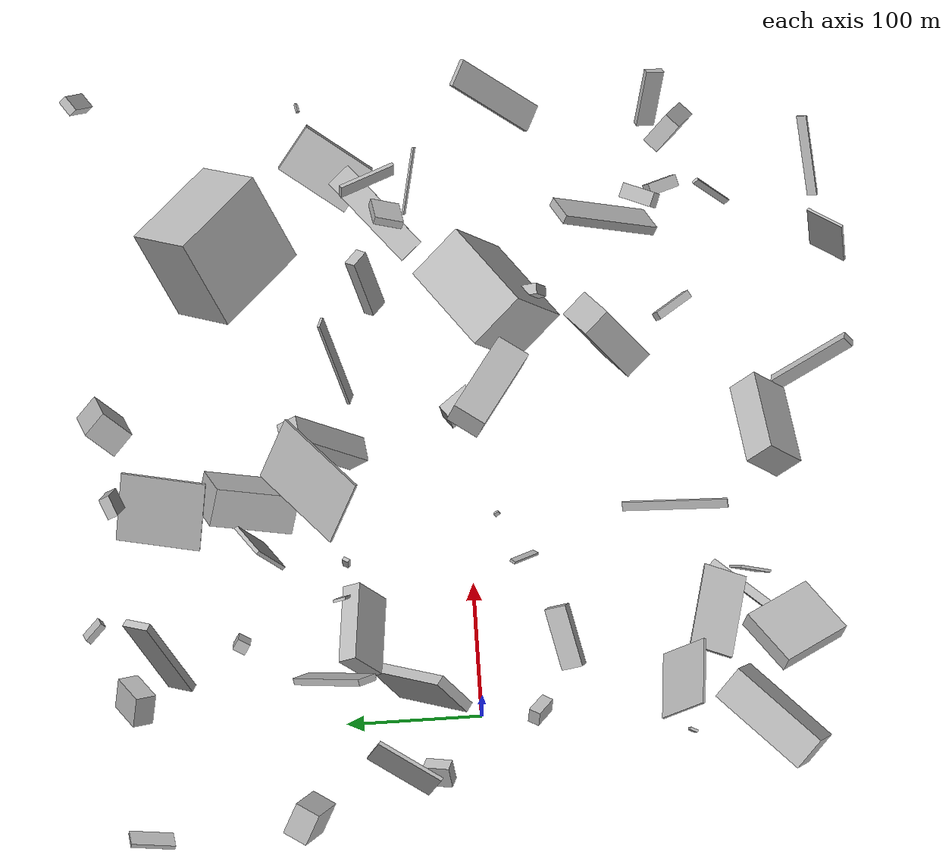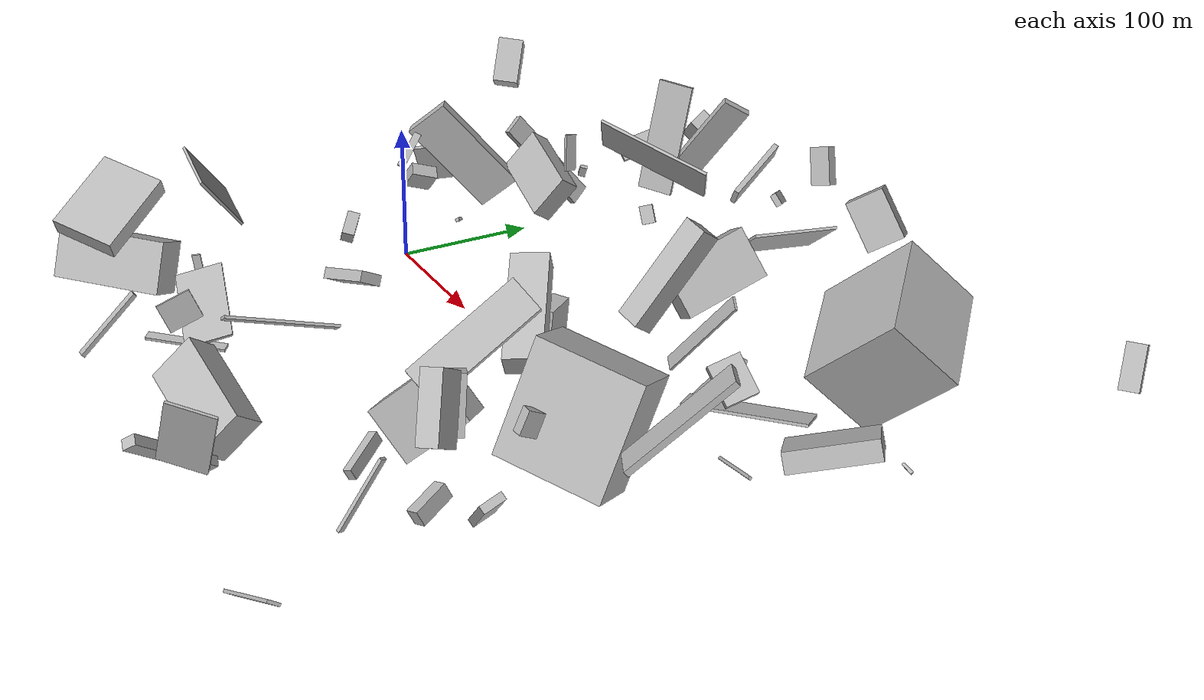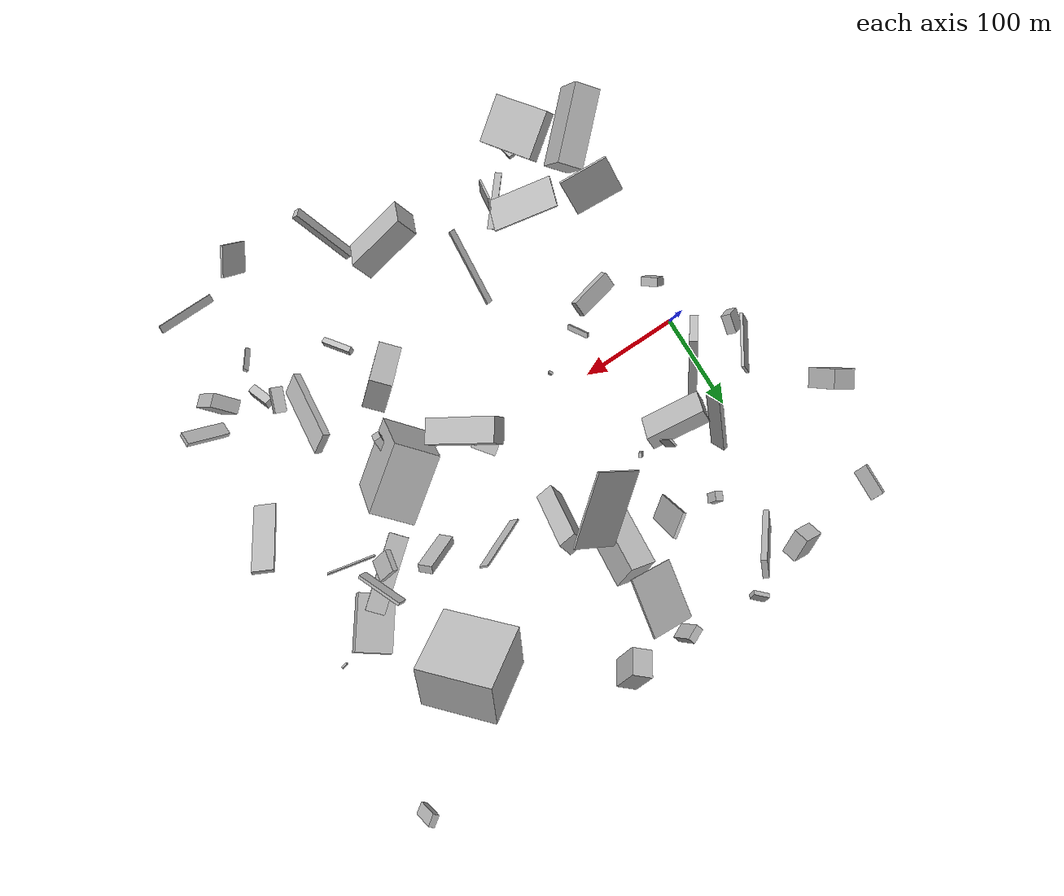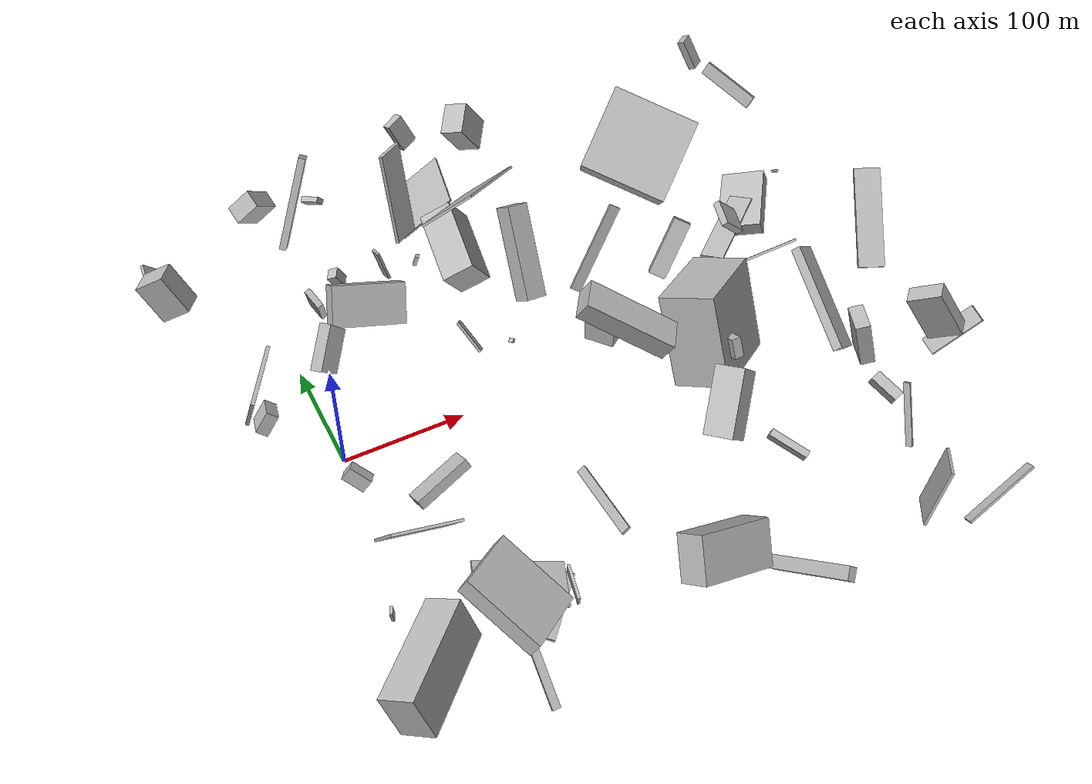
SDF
<sdf version="1.6">
 <world name="default">
  <scene>
   <sky><clouds><speed>12</speed></clouds></sky>
   <ambient>0.4 0.4 0.4 1</ambient>
   <background>0.7 0.7 0.7 1</background>
   <shadows>1</shadows>
  </scene>
  <gravity>0 0 -9.8066</gravity>
  <magnetic_field>6e-06 2.3e-05 -4.2e-05</magnetic_field>
  <physics default="0" name="default_physics" type="ode">
   <ode>
    <solver>
     <type>quick</type>
     <iters>10</iters>
     <sor>1.0</sor>
     <use_dynamic_moi_rescaling>0</use_dynamic_moi_rescaling>
    </solver>
    <constraints>
     <cfm>0</cfm>
     <erp>0.2</erp>
     <contact_max_correcting_vel>100</contact_max_correcting_vel>
     <contact_surface_layer>0.001</contact_surface_layer>
    </constraints>
   </ode>
   <max_step_size>0.004</max_step_size>
   <real_time_factor>1</real_time_factor>
   <real_time_update_rate>250</real_time_update_rate>
  </physics>
  <light name="sun" type="directional">
   <pose>0 0 10 0 0 0</pose>
   <diffuse>0.8 0.8 0.8 1</diffuse>
   <specular>0.2 0.2 0.2 1</specular>
   <attenuation>
    <range>1000</range>
    <constant>0.9</constant>
    <linear>0.01</linear>
    <quadratic>0.001</quadratic>
   </attenuation>
   <direction>-0.5 0.1 -0.9</direction>
  </light>
  <model name="building_1">
   <static>0</static>
   <pose>311.5823228846028 -7.215268494068738 65.71859845296224 2.9007131095813112 -0.3421562160943645 -0.8706125740979714</pose>
   <link name="link">
    <gravity>0</gravity>
    <pose>0 0 40.0 0 0 0</pose>
    <collision name="collision"><geometry><box><size>47 75 80</size></box></geometry></collision>
    <visual name="visual">
     <cast_shadows>0</cast_shadows>
     <geometry><box><size>47 75 80</size></box></geometry>
     <material>
      <script>
       <uri>model://HANNAS_wall/materials/scripts</uri>
       <uri>model://HANNAS_wall/materials/textures</uri>
       <name>vrc/HANNAS_wall</name>
      </script>
     </material>
    </visual>
   </link>
  </model>
  <model name="building_2">
   <static>0</static>
   <pose>227.71382739096427 -29.893906612120233 62.40925956773131 1.4283571348990558 1.0352077698665598 2.4147725639597057</pose>
   <link name="link">
    <gravity>0</gravity>
    <pose>0 0 13.0 0 0 0</pose>
    <collision name="collision"><geometry><box><size>18 80 26</size></box></geometry></collision>
    <visual name="visual">
     <cast_shadows>0</cast_shadows>
     <geometry><box><size>18 80 26</size></box></geometry>
     <material>
      <script>
       <uri>model://HANNAS_wall/materials/scripts</uri>
       <uri>model://HANNAS_wall/materials/textures</uri>
       <name>vrc/HANNAS_wall</name>
      </script>
     </material>
    </visual>
   </link>
  </model>
  <model name="building_3">
   <static>0</static>
   <pose>-27.169439239823248 -204.2750942461347 32.71089805823232 0.09844187716610353 -1.1810460849203128 2.253050503882688</pose>
   <link name="link">
    <gravity>0</gravity>
    <pose>0 0 13.5 0 0 0</pose>
    <collision name="collision"><geometry><box><size>37 80 27</size></box></geometry></collision>
    <visual name="visual">
     <cast_shadows>0</cast_shadows>
     <geometry><box><size>37 80 27</size></box></geometry>
     <material>
      <script>
       <uri>model://HANNAS_wall/materials/scripts</uri>
       <uri>model://HANNAS_wall/materials/textures</uri>
       <name>vrc/HANNAS_wall</name>
      </script>
     </material>
    </visual>
   </link>
  </model>
  <model name="building_4">
   <static>0</static>
   <pose>107.11008408262622 92.53836904630049 93.3107270292978 2.8230807257691164 -0.22441113641553048 -2.0821183867211066</pose>
   <link name="link">
    <gravity>0</gravity>
    <pose>0 0 4.0 0 0 0</pose>
    <collision name="collision"><geometry><box><size>5 3 8</size></box></geometry></collision>
    <visual name="visual">
     <cast_shadows>0</cast_shadows>
     <geometry><box><size>5 3 8</size></box></geometry>
     <material>
      <script>
       <uri>model://HANNAS_wall/materials/scripts</uri>
       <uri>model://HANNAS_wall/materials/textures</uri>
       <name>vrc/HANNAS_wall</name>
      </script>
     </material>
    </visual>
   </link>
  </model>
  <model name="building_5">
   <static>0</static>
   <pose>403.4057572144674 -270.04526337684683 33.81088034099663 0.5183256024075885 -0.5296064166585648 -1.7483981656695022</pose>
   <link name="link">
    <gravity>0</gravity>
    <pose>0 0 1.0 0 0 0</pose>
    <collision name="collision"><geometry><box><size>8 61 2</size></box></geometry></collision>
    <visual name="visual">
     <cast_shadows>0</cast_shadows>
     <geometry><box><size>8 61 2</size></box></geometry>
     <material>
      <script>
       <uri>model://HANNAS_wall/materials/scripts</uri>
       <uri>model://HANNAS_wall/materials/textures</uri>
       <name>vrc/HANNAS_wall</name>
      </script>
     </material>
    </visual>
   </link>
  </model>
  <model name="building_6">
   <static>0</static>
   <pose>157.64600168223862 158.39445541967027 34.74518730858645 -2.734412703164776 -0.4863691982176288 -0.29487709569102</pose>
   <link name="link">
    <gravity>0</gravity>
    <pose>0 0 19.5 0 0 0</pose>
    <collision name="collision"><geometry><box><size>29 64 39</size></box></geometry></collision>
    <visual name="visual">
     <cast_shadows>0</cast_shadows>
     <geometry><box><size>29 64 39</size></box></geometry>
     <material>
      <script>
       <uri>model://HANNAS_wall/materials/scripts</uri>
       <uri>model://HANNAS_wall/materials/textures</uri>
       <name>vrc/HANNAS_wall</name>
      </script>
     </material>
    </visual>
   </link>
  </model>
  <model name="building_7">
   <static>0</static>
   <pose>92.3767834815101 -192.42890245032132 48.067804564332945 -2.8090237430250515 -1.1668068554975597 -2.0783379783507883</pose>
   <link name="link">
    <gravity>0</gravity>
    <pose>0 0 12.0 0 0 0</pose>
    <collision name="collision"><geometry><box><size>21 2 24</size></box></geometry></collision>
    <visual name="visual">
     <cast_shadows>0</cast_shadows>
     <geometry><box><size>21 2 24</size></box></geometry>
     <material>
      <script>
       <uri>model://HANNAS_wall/materials/scripts</uri>
       <uri>model://HANNAS_wall/materials/textures</uri>
       <name>vrc/HANNAS_wall</name>
      </script>
     </material>
    </visual>
   </link>
  </model>
  <model name="building_8">
   <static>0</static>
   <pose>263.5522983237603 93.69458347770352 37.12961207033897 2.158362015888994 0.3669328147520385 1.452611741909062</pose>
   <link name="link">
    <gravity>0</gravity>
    <pose>0 0 5.0 0 0 0</pose>
    <collision name="collision"><geometry><box><size>2 80 10</size></box></geometry></collision>
    <visual name="visual">
     <cast_shadows>0</cast_shadows>
     <geometry><box><size>2 80 10</size></box></geometry>
     <material>
      <script>
       <uri>model://HANNAS_wall/materials/scripts</uri>
       <uri>model://HANNAS_wall/materials/textures</uri>
       <name>vrc/HANNAS_wall</name>
      </script>
     </material>
    </visual>
   </link>
  </model>
  <model name="building_9">
   <static>0</static>
   <pose>141.15003843467355 -151.1399340700005 46.59257390703485 2.7880671402783874 -0.6087237363769614 0.122484466139486</pose>
   <link name="link">
    <gravity>0</gravity>
    <pose>0 0 1.0 0 0 0</pose>
    <collision name="collision"><geometry><box><size>7 80 2</size></box></geometry></collision>
    <visual name="visual">
     <cast_shadows>0</cast_shadows>
     <geometry><box><size>7 80 2</size></box></geometry>
     <material>
      <script>
       <uri>model://HANNAS_wall/materials/scripts</uri>
       <uri>model://HANNAS_wall/materials/textures</uri>
       <name>vrc/HANNAS_wall</name>
      </script>
     </material>
    </visual>
   </link>
  </model>
  <model name="building_10">
   <static>0</static>
   <pose>216.011057210325 271.71187310640454 59.24008053682138 -1.2544443087585195 0.5134312773039709 -2.195073732443509</pose>
   <link name="link">
    <gravity>0</gravity>
    <pose>0 0 10.5 0 0 0</pose>
    <collision name="collision"><geometry><box><size>28 38 21</size></box></geometry></collision>
    <visual name="visual">
     <cast_shadows>0</cast_shadows>
     <geometry><box><size>28 38 21</size></box></geometry>
     <material>
      <script>
       <uri>model://HANNAS_wall/materials/scripts</uri>
       <uri>model://HANNAS_wall/materials/textures</uri>
       <name>vrc/HANNAS_wall</name>
      </script>
     </material>
    </visual>
   </link>
  </model>
  <model name="building_11">
   <static>0</static>
   <pose>328.44741160793774 70.06605528890296 29.210216793041717 0.9897079072508371 0.34695798727526017 -0.7069131120459554</pose>
   <link name="link">
    <gravity>0</gravity>
    <pose>0 0 4.5 0 0 0</pose>
    <collision name="collision"><geometry><box><size>15 52 9</size></box></geometry></collision>
    <visual name="visual">
     <cast_shadows>0</cast_shadows>
     <geometry><box><size>15 52 9</size></box></geometry>
     <material>
      <script>
       <uri>model://HANNAS_wall/materials/scripts</uri>
       <uri>model://HANNAS_wall/materials/textures</uri>
       <name>vrc/HANNAS_wall</name>
      </script>
     </material>
    </visual>
   </link>
  </model>
  <model name="building_12">
   <static>0</static>
   <pose>39.4439783685536 -230.24484148932638 109.17411020097731 -2.9164302063932035 -0.4713068235282853 2.093571922121048</pose>
   <link name="link">
    <gravity>0</gravity>
    <pose>0 0 6.5 0 0 0</pose>
    <collision name="collision"><geometry><box><size>59 46 13</size></box></geometry></collision>
    <visual name="visual">
     <cast_shadows>0</cast_shadows>
     <geometry><box><size>59 46 13</size></box></geometry>
     <material>
      <script>
       <uri>model://HANNAS_wall/materials/scripts</uri>
       <uri>model://HANNAS_wall/materials/textures</uri>
       <name>vrc/HANNAS_wall</name>
      </script>
     </material>
    </visual>
   </link>
  </model>
  <model name="building_13">
   <static>0</static>
   <pose>375.01800206663637 -193.6612535579355 57.790959141133435 0.8316916715519485 1.0349781838699292 -1.8346564059407298</pose>
   <link name="link">
    <gravity>0</gravity>
    <pose>0 0 1.0 0 0 0</pose>
    <collision name="collision"><geometry><box><size>50 5 2</size></box></geometry></collision>
    <visual name="visual">
     <cast_shadows>0</cast_shadows>
     <geometry><box><size>50 5 2</size></box></geometry>
     <material>
      <script>
       <uri>model://HANNAS_wall/materials/scripts</uri>
       <uri>model://HANNAS_wall/materials/textures</uri>
       <name>vrc/HANNAS_wall</name>
      </script>
     </material>
    </visual>
   </link>
  </model>
  <model name="building_14">
   <static>0</static>
   <pose>87.21004393524461 80.66120284958248 61.964207476248276 1.1522634784046486 0.897998935054637 -2.0127345417666045</pose>
   <link name="link">
    <gravity>0</gravity>
    <pose>0 0 30.0 0 0 0</pose>
    <collision name="collision"><geometry><box><size>33 15 60</size></box></geometry></collision>
    <visual name="visual">
     <cast_shadows>0</cast_shadows>
     <geometry><box><size>33 15 60</size></box></geometry>
     <material>
      <script>
       <uri>model://HANNAS_wall/materials/scripts</uri>
       <uri>model://HANNAS_wall/materials/textures</uri>
       <name>vrc/HANNAS_wall</name>
      </script>
     </material>
    </visual>
   </link>
  </model>
  <model name="building_15">
   <static>0</static>
   <pose>463.2845817538911 109.07604170917833 33.29659942357716 -0.8555534619390327 0.41497857677789396 0.19210677064996784</pose>
   <link name="link">
    <gravity>0</gravity>
    <pose>0 0 1.0 0 0 0</pose>
    <collision name="collision"><geometry><box><size>8 2 2</size></box></geometry></collision>
    <visual name="visual">
     <cast_shadows>0</cast_shadows>
     <geometry><box><size>8 2 2</size></box></geometry>
     <material>
      <script>
       <uri>model://HANNAS_wall/materials/scripts</uri>
       <uri>model://HANNAS_wall/materials/textures</uri>
       <name>vrc/HANNAS_wall</name>
      </script>
     </material>
    </visual>
   </link>
  </model>
  <model name="building_16">
   <static>0</static>
   <pose>384.2341242622547 -155.71839491717586 42.315109314754665 -0.35306890355048803 0.2716036682725365 -2.865190201799647</pose>
   <link name="link">
    <gravity>0</gravity>
    <pose>0 0 5.0 0 0 0</pose>
    <collision name="collision"><geometry><box><size>9 24 10</size></box></geometry></collision>
    <visual name="visual">
     <cast_shadows>0</cast_shadows>
     <geometry><box><size>9 24 10</size></box></geometry>
     <material>
      <script>
       <uri>model://HANNAS_wall/materials/scripts</uri>
       <uri>model://HANNAS_wall/materials/textures</uri>
       <name>vrc/HANNAS_wall</name>
      </script>
     </material>
    </visual>
   </link>
  </model>
  <model name="building_17">
   <static>0</static>
   <pose>329.0878285836289 202.44579155065966 64.95540724208334 -1.979476107473844 -0.755962532822614 -2.054992912562365</pose>
   <link name="link">
    <gravity>0</gravity>
    <pose>0 0 40.0 0 0 0</pose>
    <collision name="collision"><geometry><box><size>58 76 80</size></box></geometry></collision>
    <visual name="visual">
     <cast_shadows>0</cast_shadows>
     <geometry><box><size>58 76 80</size></box></geometry>
     <material>
      <script>
       <uri>model://HANNAS_wall/materials/scripts</uri>
       <uri>model://HANNAS_wall/materials/textures</uri>
       <name>vrc/HANNAS_wall</name>
      </script>
     </material>
    </visual>
   </link>
  </model>
  <model name="building_18">
   <static>0</static>
   <pose>20.25487404507576 245.41756043310866 51.747146782694266 0.941482906991197 0.7045184210087809 2.9156597307662353</pose>
   <link name="link">
    <gravity>0</gravity>
    <pose>0 0 8.0 0 0 0</pose>
    <collision name="collision"><geometry><box><size>24 29 16</size></box></geometry></collision>
    <visual name="visual">
     <cast_shadows>0</cast_shadows>
     <geometry><box><size>24 29 16</size></box></geometry>
     <material>
      <script>
       <uri>model://HANNAS_wall/materials/scripts</uri>
       <uri>model://HANNAS_wall/materials/textures</uri>
       <name>vrc/HANNAS_wall</name>
      </script>
     </material>
    </visual>
   </link>
  </model>
  <model name="building_19">
   <static>0</static>
   <pose>248.58546125548844 -257.9956620374854 37.31269150639801 -2.2837997902296423 0.6296352483751039 1.9367667793774963</pose>
   <link name="link">
    <gravity>0</gravity>
    <pose>0 0 5.0 0 0 0</pose>
    <collision name="collision"><geometry><box><size>71 7 10</size></box></geometry></collision>
    <visual name="visual">
     <cast_shadows>0</cast_shadows>
     <geometry><box><size>71 7 10</size></box></geometry>
     <material>
      <script>
       <uri>model://HANNAS_wall/materials/scripts</uri>
       <uri>model://HANNAS_wall/materials/textures</uri>
       <name>vrc/HANNAS_wall</name>
      </script>
     </material>
    </visual>
   </link>
  </model>
  <model name="building_20">
   <static>0</static>
   <pose>282.3557727548621 -118.48993071315628 38.9323505564783 1.783590999432179 -0.8294841957807997 -2.570909609281296</pose>
   <link name="link">
    <gravity>0</gravity>
    <pose>0 0 11.5 0 0 0</pose>
    <collision name="collision"><geometry><box><size>40 54 23</size></box></geometry></collision>
    <visual name="visual">
     <cast_shadows>0</cast_shadows>
     <geometry><box><size>40 54 23</size></box></geometry>
     <material>
      <script>
       <uri>model://HANNAS_wall/materials/scripts</uri>
       <uri>model://HANNAS_wall/materials/textures</uri>
       <name>vrc/HANNAS_wall</name>
      </script>
     </material>
    </visual>
   </link>
  </model>
  <model name="building_21">
   <static>0</static>
   <pose>373.5150642314042 41.448956238095654 185.32514745787643 -1.2127961511691823 0.4147734530998188 0.5899182741215995</pose>
   <link name="link">
    <gravity>0</gravity>
    <pose>0 0 22.5 0 0 0</pose>
    <collision name="collision"><geometry><box><size>3 10 45</size></box></geometry></collision>
    <visual name="visual">
     <cast_shadows>0</cast_shadows>
     <geometry><box><size>3 10 45</size></box></geometry>
     <material>
      <script>
       <uri>model://HANNAS_wall/materials/scripts</uri>
       <uri>model://HANNAS_wall/materials/textures</uri>
       <name>vrc/HANNAS_wall</name>
      </script>
     </material>
    </visual>
   </link>
  </model>
  <model name="building_22">
   <static>0</static>
   <pose>68.37055641632173 -163.33671394195312 33.243572725710784 2.1924566113983537 -1.1621501721484115 -0.915022841828079</pose>
   <link name="link">
    <gravity>0</gravity>
    <pose>0 0 16.5 0 0 0</pose>
    <collision name="collision"><geometry><box><size>2 69 33</size></box></geometry></collision>
    <visual name="visual">
     <cast_shadows>0</cast_shadows>
     <geometry><box><size>2 69 33</size></box></geometry>
     <material>
      <script>
       <uri>model://HANNAS_wall/materials/scripts</uri>
       <uri>model://HANNAS_wall/materials/textures</uri>
       <name>vrc/HANNAS_wall</name>
      </script>
     </material>
    </visual>
   </link>
  </model>
  <model name="building_23">
   <static>0</static>
   <pose>-18.859974366577262 -144.51142677022716 92.91680556631522 1.7694055903681585 -0.6078456305651868 1.3654486859534687</pose>
   <link name="link">
    <gravity>0</gravity>
    <pose>0 0 24.5 0 0 0</pose>
    <collision name="collision"><geometry><box><size>2 48 49</size></box></geometry></collision>
    <visual name="visual">
     <cast_shadows>0</cast_shadows>
     <geometry><box><size>2 48 49</size></box></geometry>
     <material>
      <script>
       <uri>model://HANNAS_wall/materials/scripts</uri>
       <uri>model://HANNAS_wall/materials/textures</uri>
       <name>vrc/HANNAS_wall</name>
      </script>
     </material>
    </visual>
   </link>
  </model>
  <model name="building_24">
   <static>0</static>
   <pose>-8.677510256108697 -37.616239054066874 36.63960175550555 2.6907087036001434 -0.9040316061243562 -0.17550051736599015</pose>
   <link name="link">
    <gravity>0</gravity>
    <pose>0 0 9.5 0 0 0</pose>
    <collision name="collision"><geometry><box><size>12 9 19</size></box></geometry></collision>
    <visual name="visual">
     <cast_shadows>0</cast_shadows>
     <geometry><box><size>12 9 19</size></box></geometry>
     <material>
      <script>
       <uri>model://HANNAS_wall/materials/scripts</uri>
       <uri>model://HANNAS_wall/materials/textures</uri>
       <name>vrc/HANNAS_wall</name>
      </script>
     </material>
    </visual>
   </link>
  </model>
  <model name="building_25">
   <static>0</static>
   <pose>117.34132563564846 145.54177327137148 67.94856801279208 -0.11650019015778468 -0.1757477452591863 -0.9147779396682851</pose>
   <link name="link">
    <gravity>0</gravity>
    <pose>0 0 40.0 0 0 0</pose>
    <collision name="collision"><geometry><box><size>3 25 80</size></box></geometry></collision>
    <visual name="visual">
     <cast_shadows>0</cast_shadows>
     <geometry><box><size>3 25 80</size></box></geometry>
     <material>
      <script>
       <uri>model://HANNAS_wall/materials/scripts</uri>
       <uri>model://HANNAS_wall/materials/textures</uri>
       <name>vrc/HANNAS_wall</name>
      </script>
     </material>
    </visual>
   </link>
  </model>
  <model name="building_26">
   <static>0</static>
   <pose>59.427903505583096 169.35485509418135 19.0738826677904 -1.0837955221210291 1.069884269218025 -0.07793908124223455</pose>
   <link name="link">
    <gravity>0</gravity>
    <pose>0 0 5.0 0 0 0</pose>
    <collision name="collision"><geometry><box><size>14 9 10</size></box></geometry></collision>
    <visual name="visual">
     <cast_shadows>0</cast_shadows>
     <geometry><box><size>14 9 10</size></box></geometry>
     <material>
      <script>
       <uri>model://HANNAS_wall/materials/scripts</uri>
       <uri>model://HANNAS_wall/materials/textures</uri>
       <name>vrc/HANNAS_wall</name>
      </script>
     </material>
    </visual>
   </link>
  </model>
  <model name="building_27">
   <static>0</static>
   <pose>230.13522313712758 6.2013174976857055 44.009571220359014 -1.4951313639093187 0.04019356384039678 2.212504685836968</pose>
   <link name="link">
    <gravity>0</gravity>
    <pose>0 0 6.0 0 0 0</pose>
    <collision name="collision"><geometry><box><size>25 32 12</size></box></geometry></collision>
    <visual name="visual">
     <cast_shadows>0</cast_shadows>
     <geometry><box><size>25 32 12</size></box></geometry>
     <material>
      <script>
       <uri>model://HANNAS_wall/materials/scripts</uri>
       <uri>model://HANNAS_wall/materials/textures</uri>
       <name>vrc/HANNAS_wall</name>
      </script>
     </material>
    </visual>
   </link>
  </model>
  <model name="building_28">
   <static>0</static>
   <pose>464.0050648647584 269.7814907518316 60.343663189056706 -1.5010213443359537 1.0788465098342295 -0.8935772453296292</pose>
   <link name="link">
    <gravity>0</gravity>
    <pose>0 0 6.5 0 0 0</pose>
    <collision name="collision"><geometry><box><size>30 7 13</size></box></geometry></collision>
    <visual name="visual">
     <cast_shadows>0</cast_shadows>
     <geometry><box><size>30 7 13</size></box></geometry>
     <material>
      <script>
       <uri>model://HANNAS_wall/materials/scripts</uri>
       <uri>model://HANNAS_wall/materials/textures</uri>
       <name>vrc/HANNAS_wall</name>
      </script>
     </material>
    </visual>
   </link>
  </model>
  <model name="building_29">
   <static>0</static>
   <pose>191.47437627016157 140.48021836186007 101.70698756213832 1.080798555011603 0.7558326958379574 -1.2190741389376136</pose>
   <link name="link">
    <gravity>0</gravity>
    <pose>0 0 40.0 0 0 0</pose>
    <collision name="collision"><geometry><box><size>2 52 80</size></box></geometry></collision>
    <visual name="visual">
     <cast_shadows>0</cast_shadows>
     <geometry><box><size>2 52 80</size></box></geometry>
     <material>
      <script>
       <uri>model://HANNAS_wall/materials/scripts</uri>
       <uri>model://HANNAS_wall/materials/textures</uri>
       <name>vrc/HANNAS_wall</name>
      </script>
     </material>
    </visual>
   </link>
  </model>
  <model name="building_30">
   <static>0</static>
   <pose>4.026787626841271 33.50977099035538 66.88729367303482 0.8595624470631816 -0.13324009005065476 2.5399906848664022</pose>
   <link name="link">
    <gravity>0</gravity>
    <pose>0 0 17.5 0 0 0</pose>
    <collision name="collision"><geometry><box><size>8 80 35</size></box></geometry></collision>
    <visual name="visual">
     <cast_shadows>0</cast_shadows>
     <geometry><box><size>8 80 35</size></box></geometry>
     <material>
      <script>
       <uri>model://HANNAS_wall/materials/scripts</uri>
       <uri>model://HANNAS_wall/materials/textures</uri>
       <name>vrc/HANNAS_wall</name>
      </script>
     </material>
    </visual>
   </link>
  </model>
  <model name="building_31">
   <static>0</static>
   <pose>401.4615248210611 -153.70379475502446 114.76041830896303 -0.224392355897496 -1.0133013828604371 2.538497759425101</pose>
   <link name="link">
    <gravity>0</gravity>
    <pose>0 0 13.0 0 0 0</pose>
    <collision name="collision"><geometry><box><size>42 13 26</size></box></geometry></collision>
    <visual name="visual">
     <cast_shadows>0</cast_shadows>
     <geometry><box><size>42 13 26</size></box></geometry>
     <material>
      <script>
       <uri>model://HANNAS_wall/materials/scripts</uri>
       <uri>model://HANNAS_wall/materials/textures</uri>
       <name>vrc/HANNAS_wall</name>
      </script>
     </material>
    </visual>
   </link>
  </model>
  <model name="building_32">
   <static>0</static>
   <pose>-41.775458544062545 32.40832329017775 36.7475244376213 0.9247192618688034 -0.30791513011752825 -1.754715988460749</pose>
   <link name="link">
    <gravity>0</gravity>
    <pose>0 0 5.0 0 0 0</pose>
    <collision name="collision"><geometry><box><size>20 18 10</size></box></geometry></collision>
    <visual name="visual">
     <cast_shadows>0</cast_shadows>
     <geometry><box><size>20 18 10</size></box></geometry>
     <material>
      <script>
       <uri>model://HANNAS_wall/materials/scripts</uri>
       <uri>model://HANNAS_wall/materials/textures</uri>
       <name>vrc/HANNAS_wall</name>
      </script>
     </material>
    </visual>
   </link>
  </model>
  <model name="building_33">
   <static>0</static>
   <pose>419.88116542883057 91.06369554150888 20.903911346913432 0.2415546387402708 -0.3038683591020125 -0.6840717569035367</pose>
   <link name="link">
    <gravity>0</gravity>
    <pose>0 0 7.0 0 0 0</pose>
    <collision name="collision"><geometry><box><size>38 59 14</size></box></geometry></collision>
    <visual name="visual">
     <cast_shadows>0</cast_shadows>
     <geometry><box><size>38 59 14</size></box></geometry>
     <material>
      <script>
       <uri>model://HANNAS_wall/materials/scripts</uri>
       <uri>model://HANNAS_wall/materials/textures</uri>
       <name>vrc/HANNAS_wall</name>
      </script>
     </material>
    </visual>
   </link>
  </model>
  <model name="building_34">
   <static>0</static>
   <pose>96.23422461371239 -34.240872477048356 125.85243770908652 -0.9913752317978748 0.6555833696524416 2.858659046551056</pose>
   <link name="link">
    <gravity>0</gravity>
    <pose>0 0 2.5 0 0 0</pose>
    <collision name="collision"><geometry><box><size>2 26 5</size></box></geometry></collision>
    <visual name="visual">
     <cast_shadows>0</cast_shadows>
     <geometry><box><size>2 26 5</size></box></geometry>
     <material>
      <script>
       <uri>model://HANNAS_wall/materials/scripts</uri>
       <uri>model://HANNAS_wall/materials/textures</uri>
       <name>vrc/HANNAS_wall</name>
      </script>
     </material>
    </visual>
   </link>
  </model>
  <model name="building_35">
   <static>0</static>
   <pose>-21.81808563021172 -154.7861368430893 19.95437532615108 1.6391169916804424 0.13808656419449816 -2.008054779486641</pose>
   <link name="link">
    <gravity>0</gravity>
    <pose>0 0 1.0 0 0 0</pose>
    <collision name="collision"><geometry><box><size>6 11 2</size></box></geometry></collision>
    <visual name="visual">
     <cast_shadows>0</cast_shadows>
     <geometry><box><size>6 11 2</size></box></geometry>
     <material>
      <script>
       <uri>model://HANNAS_wall/materials/scripts</uri>
       <uri>model://HANNAS_wall/materials/textures</uri>
       <name>vrc/HANNAS_wall</name>
      </script>
     </material>
    </visual>
   </link>
  </model>
  <model name="building_36">
   <static>0</static>
   <pose>-45.00544685028576 63.8708177003741 34.62926754265074 0.3206651171943218 -0.15789375058776545 0.9922478048374803</pose>
   <link name="link">
    <gravity>0</gravity>
    <pose>0 0 16.0 0 0 0</pose>
    <collision name="collision"><geometry><box><size>53 3 32</size></box></geometry></collision>
    <visual name="visual">
     <cast_shadows>0</cast_shadows>
     <geometry><box><size>53 3 32</size></box></geometry>
     <material>
      <script>
       <uri>model://HANNAS_wall/materials/scripts</uri>
       <uri>model://HANNAS_wall/materials/textures</uri>
       <name>vrc/HANNAS_wall</name>
      </script>
     </material>
    </visual>
   </link>
  </model>
  <model name="building_37">
   <static>0</static>
   <pose>372.6221154568044 58.28634522731715 66.30114014660046 -2.0027260830487803 -0.7811795646107852 -3.001039400957704</pose>
   <link name="link">
    <gravity>0</gravity>
    <pose>0 0 11.0 0 0 0</pose>
    <collision name="collision"><geometry><box><size>27 6 22</size></box></geometry></collision>
    <visual name="visual">
     <cast_shadows>0</cast_shadows>
     <geometry><box><size>27 6 22</size></box></geometry>
     <material>
      <script>
       <uri>model://HANNAS_wall/materials/scripts</uri>
       <uri>model://HANNAS_wall/materials/textures</uri>
       <name>vrc/HANNAS_wall</name>
      </script>
     </material>
    </visual>
   </link>
  </model>
  <model name="building_38">
   <static>0</static>
   <pose>213.06166460450675 106.14360390153966 44.6668277388099 1.3210631512206057 -0.62112202040314 -1.2905491120204038</pose>
   <link name="link">
    <gravity>0</gravity>
    <pose>0 0 9.5 0 0 0</pose>
    <collision name="collision"><geometry><box><size>18 80 19</size></box></geometry></collision>
    <visual name="visual">
     <cast_shadows>0</cast_shadows>
     <geometry><box><size>18 80 19</size></box></geometry>
     <material>
      <script>
       <uri>model://HANNAS_wall/materials/scripts</uri>
       <uri>model://HANNAS_wall/materials/textures</uri>
       <name>vrc/HANNAS_wall</name>
      </script>
     </material>
    </visual>
   </link>
  </model>
  <model name="building_39">
   <static>0</static>
   <pose>21.967547804714506 106.01642388393255 63.69664783626112 -1.0192237734390468 -0.8926439084567518 -1.8504096592191146</pose>
   <link name="link">
    <gravity>0</gravity>
    <pose>0 0 2.5 0 0 0</pose>
    <collision name="collision"><geometry><box><size>80 16 5</size></box></geometry></collision>
    <visual name="visual">
     <cast_shadows>0</cast_shadows>
     <geometry><box><size>80 16 5</size></box></geometry>
     <material>
      <script>
       <uri>model://HANNAS_wall/materials/scripts</uri>
       <uri>model://HANNAS_wall/materials/textures</uri>
       <name>vrc/HANNAS_wall</name>
      </script>
     </material>
    </visual>
   </link>
  </model>
  <model name="building_40">
   <static>0</static>
   <pose>-77.0705613503469 247.301792874801 12.50146879140895 -2.2981692405443583 -0.22394264321858165 1.4909960873636217</pose>
   <link name="link">
    <gravity>0</gravity>
    <pose>0 0 1.5 0 0 0</pose>
    <collision name="collision"><geometry><box><size>33 17 3</size></box></geometry></collision>
    <visual name="visual">
     <cast_shadows>0</cast_shadows>
     <geometry><box><size>33 17 3</size></box></geometry>
     <material>
      <script>
       <uri>model://HANNAS_wall/materials/scripts</uri>
       <uri>model://HANNAS_wall/materials/textures</uri>
       <name>vrc/HANNAS_wall</name>
      </script>
     </material>
    </visual>
   </link>
  </model>
  <model name="building_41">
   <static>0</static>
   <pose>64.52186657368114 -219.981656734046 17.217773304592065 -1.8645947931064075 -1.4176111481939386 -0.43054801527398423</pose>
   <link name="link">
    <gravity>0</gravity>
    <pose>0 0 28.5 0 0 0</pose>
    <collision name="collision"><geometry><box><size>2 7 57</size></box></geometry></collision>
    <visual name="visual">
     <cast_shadows>0</cast_shadows>
     <geometry><box><size>2 7 57</size></box></geometry>
     <material>
      <script>
       <uri>model://HANNAS_wall/materials/scripts</uri>
       <uri>model://HANNAS_wall/materials/textures</uri>
       <name>vrc/HANNAS_wall</name>
      </script>
     </material>
    </visual>
   </link>
  </model>
  <model name="building_42">
   <static>0</static>
   <pose>203.3673532046606 -231.9609166340783 44.54213009233709 2.2523088020837707 -0.3979482678607331 -3.030017246077412</pose>
   <link name="link">
    <gravity>0</gravity>
    <pose>0 0 12.0 0 0 0</pose>
    <collision name="collision"><geometry><box><size>67 35 24</size></box></geometry></collision>
    <visual name="visual">
     <cast_shadows>0</cast_shadows>
     <geometry><box><size>67 35 24</size></box></geometry>
     <material>
      <script>
       <uri>model://HANNAS_wall/materials/scripts</uri>
       <uri>model://HANNAS_wall/materials/textures</uri>
       <name>vrc/HANNAS_wall</name>
      </script>
     </material>
    </visual>
   </link>
  </model>
  <model name="building_43">
   <static>0</static>
   <pose>-75.26146760463584 123.38368352872271 89.38072458890946 -0.5235447070317651 0.10986940548781615 0.979461425783134</pose>
   <link name="link">
    <gravity>0</gravity>
    <pose>0 0 17.0 0 0 0</pose>
    <collision name="collision"><geometry><box><size>19 25 34</size></box></geometry></collision>
    <visual name="visual">
     <cast_shadows>0</cast_shadows>
     <geometry><box><size>19 25 34</size></box></geometry>
     <material>
      <script>
       <uri>model://HANNAS_wall/materials/scripts</uri>
       <uri>model://HANNAS_wall/materials/textures</uri>
       <name>vrc/HANNAS_wall</name>
      </script>
     </material>
    </visual>
   </link>
  </model>
  <model name="building_44">
   <static>0</static>
   <pose>376.8566745400142 56.0077750449566 42.27850204881422 0.0373812181170791 -0.18365526813056893 -0.8857045444613852</pose>
   <link name="link">
    <gravity>0</gravity>
    <pose>0 0 1.0 0 0 0</pose>
    <collision name="collision"><geometry><box><size>20 80 2</size></box></geometry></collision>
    <visual name="visual">
     <cast_shadows>0</cast_shadows>
     <geometry><box><size>20 80 2</size></box></geometry>
     <material>
      <script>
       <uri>model://HANNAS_wall/materials/scripts</uri>
       <uri>model://HANNAS_wall/materials/textures</uri>
       <name>vrc/HANNAS_wall</name>
      </script>
     </material>
    </visual>
   </link>
  </model>
  <model name="building_45">
   <static>0</static>
   <pose>404.3238748437726 28.749341339546728 24.982062452657352 0.4124916593067196 -0.727786953930158 -2.074669773785679</pose>
   <link name="link">
    <gravity>0</gravity>
    <pose>0 0 1.0 0 0 0</pose>
    <collision name="collision"><geometry><box><size>2 51 2</size></box></geometry></collision>
    <visual name="visual">
     <cast_shadows>0</cast_shadows>
     <geometry><box><size>2 51 2</size></box></geometry>
     <material>
      <script>
       <uri>model://HANNAS_wall/materials/scripts</uri>
       <uri>model://HANNAS_wall/materials/textures</uri>
       <name>vrc/HANNAS_wall</name>
      </script>
     </material>
    </visual>
   </link>
  </model>
  <model name="building_46">
   <static>0</static>
   <pose>297.6608876371505 -159.1196143991367 31.52648308696846 -2.2954468986285113 1.1394655087345933 1.424198965525366</pose>
   <link name="link">
    <gravity>0</gravity>
    <pose>0 0 3.0 0 0 0</pose>
    <collision name="collision"><geometry><box><size>8 32 6</size></box></geometry></collision>
    <visual name="visual">
     <cast_shadows>0</cast_shadows>
     <geometry><box><size>8 32 6</size></box></geometry>
     <material>
      <script>
       <uri>model://HANNAS_wall/materials/scripts</uri>
       <uri>model://HANNAS_wall/materials/textures</uri>
       <name>vrc/HANNAS_wall</name>
      </script>
     </material>
    </visual>
   </link>
  </model>
  <model name="building_47">
   <static>0</static>
   <pose>369.7498473460787 -141.0062151852495 97.46020715215776 1.8160640080555641 -0.07471056929600077 -1.974323567905649</pose>
   <link name="link">
    <gravity>0</gravity>
    <pose>0 0 5.5 0 0 0</pose>
    <collision name="collision"><geometry><box><size>24 37 11</size></box></geometry></collision>
    <visual name="visual">
     <cast_shadows>0</cast_shadows>
     <geometry><box><size>24 37 11</size></box></geometry>
     <material>
      <script>
       <uri>model://HANNAS_wall/materials/scripts</uri>
       <uri>model://HANNAS_wall/materials/textures</uri>
       <name>vrc/HANNAS_wall</name>
      </script>
     </material>
    </visual>
   </link>
  </model>
  <model name="building_48">
   <static>0</static>
   <pose>328.355947487514 -274.85033663287334 92.2113887690014 -0.880554396052414 -1.2110137239364642 0.22748368451734227</pose>
   <link name="link">
    <gravity>0</gravity>
    <pose>0 0 1.0 0 0 0</pose>
    <collision name="collision"><geometry><box><size>45 30 2</size></box></geometry></collision>
    <visual name="visual">
     <cast_shadows>0</cast_shadows>
     <geometry><box><size>45 30 2</size></box></geometry>
     <material>
      <script>
       <uri>model://HANNAS_wall/materials/scripts</uri>
       <uri>model://HANNAS_wall/materials/textures</uri>
       <name>vrc/HANNAS_wall</name>
      </script>
     </material>
    </visual>
   </link>
  </model>
  <model name="building_49">
   <static>0</static>
   <pose>455.9071982057202 -41.511159895465994 99.05036668373721 1.6269902131095655 0.74056525425972 -1.9904687418772031</pose>
   <link name="link">
    <gravity>0</gravity>
    <pose>0 0 10.5 0 0 0</pose>
    <collision name="collision"><geometry><box><size>80 4 21</size></box></geometry></collision>
    <visual name="visual">
     <cast_shadows>0</cast_shadows>
     <geometry><box><size>80 4 21</size></box></geometry>
     <material>
      <script>
       <uri>model://HANNAS_wall/materials/scripts</uri>
       <uri>model://HANNAS_wall/materials/textures</uri>
       <name>vrc/HANNAS_wall</name>
      </script>
     </material>
    </visual>
   </link>
  </model>
  <model name="building_50">
   <static>0</static>
   <pose>343.97277511386613 -144.17299302710867 96.55937503361494 0.821290522240319 0.6503928271296734 2.594272937755688</pose>
   <link name="link">
    <gravity>0</gravity>
    <pose>0 0 40.0 0 0 0</pose>
    <collision name="collision"><geometry><box><size>7 24 80</size></box></geometry></collision>
    <visual name="visual">
     <cast_shadows>0</cast_shadows>
     <geometry><box><size>7 24 80</size></box></geometry>
     <material>
      <script>
       <uri>model://HANNAS_wall/materials/scripts</uri>
       <uri>model://HANNAS_wall/materials/textures</uri>
       <name>vrc/HANNAS_wall</name>
      </script>
     </material>
    </visual>
   </link>
  </model>
  <model name="building_51">
   <static>0</static>
   <pose>53.06836473443305 241.5693532456059 58.16590785864295 -0.47076468144490435 0.9569399931521546 -2.4805971370089237</pose>
   <link name="link">
    <gravity>0</gravity>
    <pose>0 0 11.0 0 0 0</pose>
    <collision name="collision"><geometry><box><size>80 6 22</size></box></geometry></collision>
    <visual name="visual">
     <cast_shadows>0</cast_shadows>
     <geometry><box><size>80 6 22</size></box></geometry>
     <material>
      <script>
       <uri>model://HANNAS_wall/materials/scripts</uri>
       <uri>model://HANNAS_wall/materials/textures</uri>
       <name>vrc/HANNAS_wall</name>
      </script>
     </material>
    </visual>
   </link>
  </model>
  <model name="building_52">
   <static>0</static>
   <pose>166.61331295154127 258.7921976279357 67.08265273642698 -0.292932988579222 -0.3042539677304379 0.39674280362023095</pose>
   <link name="link">
    <gravity>0</gravity>
    <pose>0 0 14.0 0 0 0</pose>
    <collision name="collision"><geometry><box><size>16 8 28</size></box></geometry></collision>
    <visual name="visual">
     <cast_shadows>0</cast_shadows>
     <geometry><box><size>16 8 28</size></box></geometry>
     <material>
      <script>
       <uri>model://HANNAS_wall/materials/scripts</uri>
       <uri>model://HANNAS_wall/materials/textures</uri>
       <name>vrc/HANNAS_wall</name>
      </script>
     </material>
    </visual>
   </link>
  </model>
  <model name="building_53">
   <static>0</static>
   <pose>162.5931015839737 228.05229243592714 29.502031147598075 -2.500113162745213 -0.02393217516498744 -1.7730539345444174</pose>
   <link name="link">
    <gravity>0</gravity>
    <pose>0 0 1.0 0 0 0</pose>
    <collision name="collision"><geometry><box><size>63 55 2</size></box></geometry></collision>
    <visual name="visual">
     <cast_shadows>0</cast_shadows>
     <geometry><box><size>63 55 2</size></box></geometry>
     <material>
      <script>
       <uri>model://HANNAS_wall/materials/scripts</uri>
       <uri>model://HANNAS_wall/materials/textures</uri>
       <name>vrc/HANNAS_wall</name>
      </script>
     </material>
    </visual>
   </link>
  </model>
  <model name="building_54">
   <static>0</static>
   <pose>311.8848877841878 -44.138674084775026 26.50896987705942 1.1196508834131882 -0.016274290764410566 0.014263406432172167</pose>
   <link name="link">
    <gravity>0</gravity>
    <pose>0 0 11.0 0 0 0</pose>
    <collision name="collision"><geometry><box><size>8 17 22</size></box></geometry></collision>
    <visual name="visual">
     <cast_shadows>0</cast_shadows>
     <geometry><box><size>8 17 22</size></box></geometry>
     <material>
      <script>
       <uri>model://HANNAS_wall/materials/scripts</uri>
       <uri>model://HANNAS_wall/materials/textures</uri>
       <name>vrc/HANNAS_wall</name>
      </script>
     </material>
    </visual>
   </link>
  </model>
  <model name="building_55">
   <static>0</static>
   <pose>44.66079979537071 -241.06935309223903 23.17783934235011 1.5159716119447082 0.8309733291385331 1.5162617870983104</pose>
   <link name="link">
    <gravity>0</gravity>
    <pose>0 0 3.0 0 0 0</pose>
    <collision name="collision"><geometry><box><size>3 54 6</size></box></geometry></collision>
    <visual name="visual">
     <cast_shadows>0</cast_shadows>
     <geometry><box><size>3 54 6</size></box></geometry>
     <material>
      <script>
       <uri>model://HANNAS_wall/materials/scripts</uri>
       <uri>model://HANNAS_wall/materials/textures</uri>
       <name>vrc/HANNAS_wall</name>
      </script>
     </material>
    </visual>
   </link>
  </model>
  <model name="building_56">
   <static>0</static>
   <pose>53.89481938949629 -66.68861522028982 16.315095181103942 -0.49495662181410194 -0.29402120630253475 0.2308419497374753</pose>
   <link name="link">
    <gravity>0</gravity>
    <pose>0 0 4.0 0 0 0</pose>
    <collision name="collision"><geometry><box><size>47 17 8</size></box></geometry></collision>
    <visual name="visual">
     <cast_shadows>0</cast_shadows>
     <geometry><box><size>47 17 8</size></box></geometry>
     <material>
      <script>
       <uri>model://HANNAS_wall/materials/scripts</uri>
       <uri>model://HANNAS_wall/materials/textures</uri>
       <name>vrc/HANNAS_wall</name>
      </script>
     </material>
    </visual>
   </link>
  </model>
  <model name="building_57">
   <static>0</static>
   <pose>134.52549502198752 -19.38032400334006 88.66660435757186 2.4295234564581065 0.2775239394227286 2.1064177308688494</pose>
   <link name="link">
    <gravity>0</gravity>
    <pose>0 0 1.0 0 0 0</pose>
    <collision name="collision"><geometry><box><size>4 3 2</size></box></geometry></collision>
    <visual name="visual">
     <cast_shadows>0</cast_shadows>
     <geometry><box><size>4 3 2</size></box></geometry>
     <material>
      <script>
       <uri>model://HANNAS_wall/materials/scripts</uri>
       <uri>model://HANNAS_wall/materials/textures</uri>
       <name>vrc/HANNAS_wall</name>
      </script>
     </material>
    </visual>
   </link>
  </model>
  <model name="building_58">
   <static>0</static>
   <pose>427.8773531167517 -147.76135796715624 61.206858308855296 -0.47292796189764885 -0.7311165673558035 -2.757385121449842</pose>
   <link name="link">
    <gravity>0</gravity>
    <pose>0 0 22.5 0 0 0</pose>
    <collision name="collision"><geometry><box><size>5 14 45</size></box></geometry></collision>
    <visual name="visual">
     <cast_shadows>0</cast_shadows>
     <geometry><box><size>5 14 45</size></box></geometry>
     <material>
      <script>
       <uri>model://HANNAS_wall/materials/scripts</uri>
       <uri>model://HANNAS_wall/materials/textures</uri>
       <name>vrc/HANNAS_wall</name>
      </script>
     </material>
    </visual>
   </link>
  </model>
  <model name="building_59">
   <static>0</static>
   <pose>77.55226237929182 96.96535749089581 92.46266941544116 -1.3744033264501045 -0.18137064713190137 -1.4085255791010016</pose>
   <link name="link">
    <gravity>0</gravity>
    <pose>0 0 1.0 0 0 0</pose>
    <collision name="collision"><geometry><box><size>9 26 2</size></box></geometry></collision>
    <visual name="visual">
     <cast_shadows>0</cast_shadows>
     <geometry><box><size>9 26 2</size></box></geometry>
     <material>
      <script>
       <uri>model://HANNAS_wall/materials/scripts</uri>
       <uri>model://HANNAS_wall/materials/textures</uri>
       <name>vrc/HANNAS_wall</name>
      </script>
     </material>
    </visual>
   </link>
  </model>
  <model name="building_60">
   <static>0</static>
   <pose>81.63980688473903 283.2645081532559 13.175451921200331 -0.3153823951436238 -0.6199976763648042 0.9490017766516072</pose>
   <link name="link">
    <gravity>0</gravity>
    <pose>0 0 5.0 0 0 0</pose>
    <collision name="collision"><geometry><box><size>5 17 10</size></box></geometry></collision>
    <visual name="visual">
     <cast_shadows>0</cast_shadows>
     <geometry><box><size>5 17 10</size></box></geometry>
     <material>
      <script>
       <uri>model://HANNAS_wall/materials/scripts</uri>
       <uri>model://HANNAS_wall/materials/textures</uri>
       <name>vrc/HANNAS_wall</name>
      </script>
     </material>
    </visual>
   </link>
  </model>
 </world>
</sdf>
